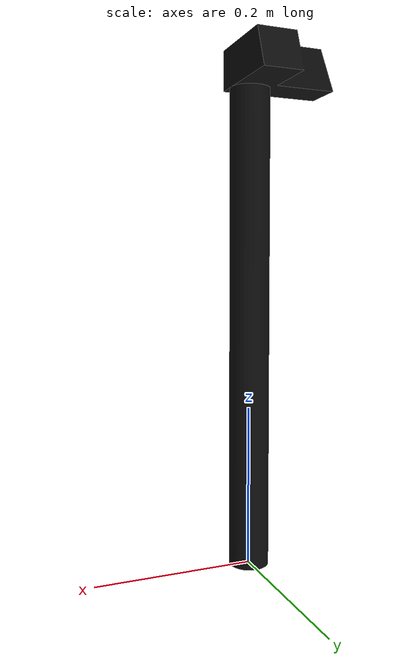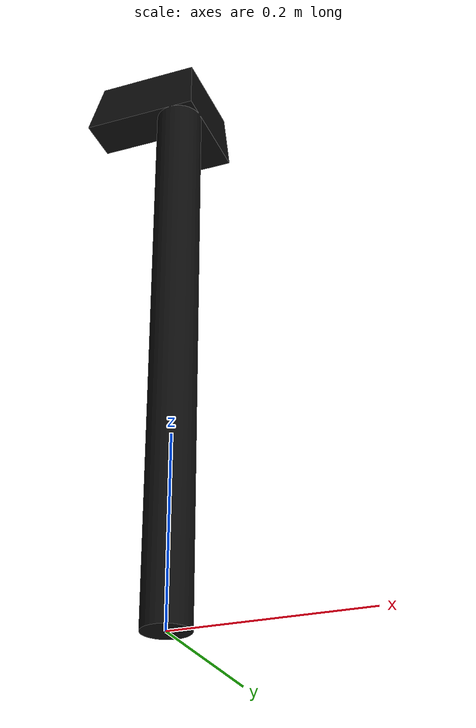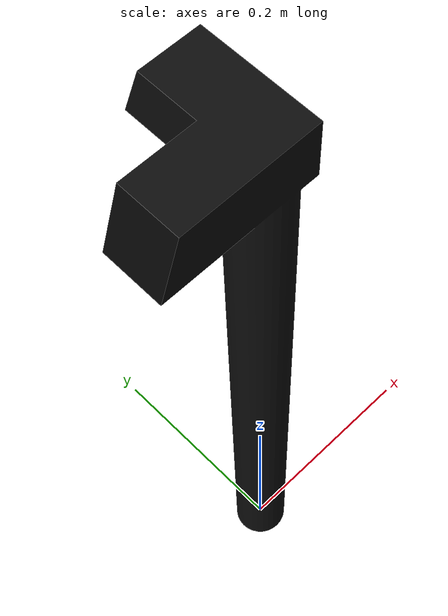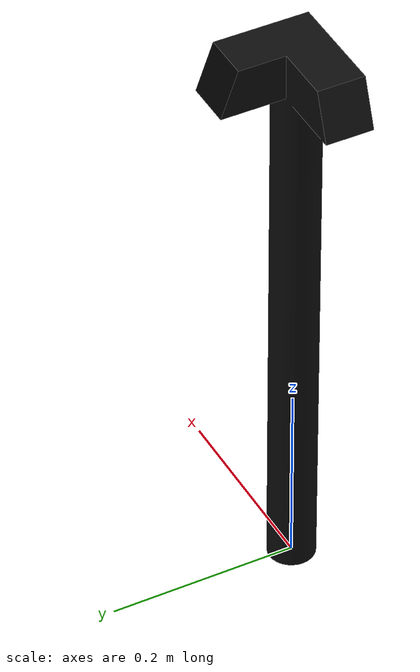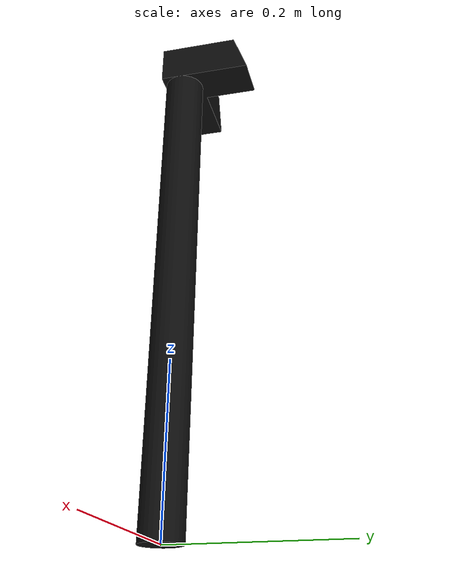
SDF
<?xml version='1.0'?>
<sdf version="1.5">
  <model name="docking_pole">
    <pose>0 0 0 0 0 3.14</pose>
    <static>true</static>
    <link name="link">
      <visual name="docking_pole">
        <pose>0 0 0 0 0 0</pose>
        <geometry>
          <mesh>
            <uri>model://docking_pole/meshes/docking_pole.stl</uri>
          </mesh>
        </geometry>
        <material>
          <ambient>0.5 0.5 0.5 1</ambient>
          <diffuse>0.05 0.05 0.05 1</diffuse>
          <specular>0.01 0.01 0.01 1</specular>
          <emissive>0.1 0.1 0.1 1</emissive>
        </material>
      </visual>
      <light name="light_1" type="spot">
        <pose frame=''>0.075 0 0.625 0 -0.7854 0</pose>
        <attenuation>
          <range>30</range>
          <linear>0.05</linear>
        </attenuation>
        <diffuse>1 0 0 1</diffuse>
        <specular>1 0 0 1</specular>
        <spot>
          <inner_angle>0.3</inner_angle>
          <outer_angle>0.35</outer_angle>
          <falloff>1</falloff>
        </spot>
        <direction>0 0 -1</direction>
      </light>
      <light name="light_2" type="spot">
        <pose frame=''>0 -0.075 0.625 0 -0.7854 -1.5708</pose>
        <attenuation>
          <range>30</range>
          <linear>0.05</linear>
        </attenuation>
        <diffuse>1 0 0 1</diffuse>
        <specular>1 0 0 1</specular>
        <spot>
          <inner_angle>0.3</inner_angle>
          <outer_angle>0.35</outer_angle>
          <falloff>1</falloff>
        </spot>
        <direction>0 0 -1</direction>
      </light>
    </link>

    <plugin name='light_control' filename='libFlashLightPlugin.so'>
    <enable>true</enable>
    <light>
      <id>docking_pole/light1</id>
      <duration>1</duration>
      <interval>0</interval>
      <color>1 0 0</color>
    </light>
    <light>
      <id>docking_pole/light2</id>
      <duration>1</duration>
      <interval>0</interval>
      <color>1 0 0</color>
    </light>
    </plugin>
  </model>
</sdf>
